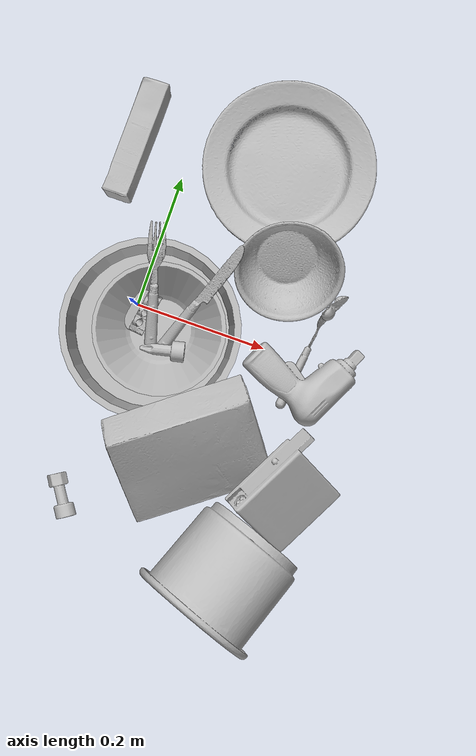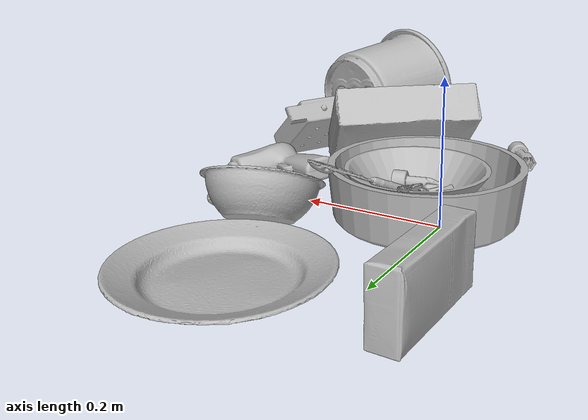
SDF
<sdf version="1.4">
  <world name="default">
    <light name="light1" type="point">
      <pose>0 0 1 0 0 0</pose>
      <diffuse>3 3 3 1</diffuse>
      <specular>3 3 3 1</specular>
    </light>
    <light name="light2" type="point">
      <pose>0 0.5 2 0 0 0</pose>
      <diffuse>1 1 1 1</diffuse>
      <specular>1 1 1 1</specular>
    </light>
    <light name="light3" type="point">
      <pose>0 0.5 2 0 0 0</pose>
      <diffuse>3 3 3 1</diffuse>
      <specular>3 3 3 1</specular>
    </light>
    <scene>
      <ambient>0.7 0.7 0.7</ambient>
    </scene>
    <model name="plate1">
      <link name="link_plate1">
        <collision name="default">
          <geometry>
            <mesh>
              <uri>model://plate/collision_meshes/collision.obj</uri>
              <scale>1.0 1.0 1.0</scale>
            </mesh>
          </geometry>
          <surface>
            <friction>
              <ode>
                <mu>0.5</mu>
                <mu2>0.5</mu2>
              </ode>
            </friction>
          <contact>
        <ode>
            <max_vel>0</max_vel>
            <min_depth>0.0001</min_depth>
            <kp>1e8</kp>
        </ode>
    </contact></surface>
        </collision>
        <visual name="default">
          <geometry>
            <mesh>
              <uri>model://plate/visual_meshes/visual.dae</uri>
              <scale>1.0 1.0 1.0</scale>
            </mesh>
          </geometry>
        </visual>
        <inertial>
          <mass>0.11001742631196976</mass>
          <pose>-0.0006044686888344586 0.000278257648460567 -0.0010561998933553696 0.00221878912528286 -0.0032254756485070152 0.4526088917028743</pose>
          <inertia>
            <ixx>0.00051466376</ixx>
            <iyy>0.0005097412</iyy>
            <izz>0.0010066056</izz>
            <ixy>0</ixy>
            <ixz>0</ixz>
            <iyz>0</iyz>
          </inertia>
        </inertial>
      </link>
      <pose>0.1466570943593979 0.2662479877471924 0.013734634965658188 -4.242810837939208e-06 -2.1819527553199885e-05 0.8707884709067185</pose>
    </model>
    <model name="plate2">
      <link name="link_plate2">
        <collision name="default">
          <geometry>
            <mesh>
              <uri>model://pan_tefal/collision_meshes/collision.obj</uri>
              <scale>1.0 1.0 1.0</scale>
            </mesh>
          </geometry>
          <surface>
            <friction>
              <ode>
                <mu>0.5</mu>
                <mu2>0.5</mu2>
              </ode>
            </friction>
          <contact>
        <ode>
            <max_vel>0</max_vel>
            <min_depth>0.0001</min_depth>
            <kp>1e8</kp>
        </ode>
    </contact></surface>
        </collision>
        <visual name="default">
          <geometry>
            <mesh>
              <uri>model://pan_tefal/visual_meshes/visual.dae</uri>
              <scale>1.0 1.0 1.0</scale>
            </mesh>
          </geometry>
        </visual>
        <inertial>
          <mass>1.457576870918274</mass>
          <pose>-0.00018002426077146083 3.279360316810198e-05 -0.008514936082065105 0.0008190306735146073 -0.00033013365411173643 -0.33185917339097665</pose>
          <inertia>
            <ixx>0.010061583</ixx>
            <iyy>0.01012645</iyy>
            <izz>0.01852144</izz>
            <ixy>0</ixy>
            <ixz>0</ixz>
            <iyz>0</iyz>
          </inertia>
        </inertial>
      </link>
      <pose>0.033562950789928436 -0.028298603370785713 0.038050003349781036 -7.843687031109581e-08 -2.0860222666657192e-07 2.054927818524834</pose>
    </model>
    <model name="bowl1">
      <link name="link_bowl1">
        <collision name="default">
          <geometry>
            <mesh>
              <uri>model://bowl_a/collision_meshes/collision.obj</uri>
              <scale>1.0 1.0 1.0</scale>
            </mesh>
          </geometry>
          <surface>
            <friction>
              <ode>
                <mu>0.5</mu>
                <mu2>0.5</mu2>
              </ode>
            </friction>
          <contact>
        <ode>
            <max_vel>0</max_vel>
            <min_depth>0.0001</min_depth>
            <kp>1e8</kp>
        </ode>
    </contact></surface>
        </collision>
        <visual name="default">
          <geometry>
            <mesh>
              <uri>model://bowl_a/visual_meshes/visual.dae</uri>
              <scale>1.0 1.0 1.0</scale>
            </mesh>
          </geometry>
        </visual>
        <inertial>
          <mass>0.29746556282043457</mass>
          <pose>0.0002786756958812475 4.7311452362919226e-05 -0.0013765294570475817 -0.0009805438325310402 -0.001093816410149737 -0.19123071729823712</pose>
          <inertia>
            <ixx>0.0008468981</ixx>
            <iyy>0.00085209764</iyy>
            <izz>0.0015062407</izz>
            <ixy>0</ixy>
            <ixz>0</ixz>
            <iyz>0</iyz>
          </inertia>
        </inertial>
      </link>
      <pose>0.04555271938443184 -0.024563731625676155 0.03814271092414856 -3.687482895918681e-05 -4.3826119730024e-06 -0.4978534741891756</pose>
    </model>
    <model name="bowl2">
      <link name="link_bowl2">
        <collision name="default">
          <geometry>
            <mesh>
              <uri>model://bowl/collision_meshes/collision.obj</uri>
              <scale>1.0 1.0 1.0</scale>
            </mesh>
          </geometry>
          <surface>
            <friction>
              <ode>
                <mu>0.5</mu>
                <mu2>0.5</mu2>
              </ode>
            </friction>
          <contact>
        <ode>
            <max_vel>0</max_vel>
            <min_depth>0.0001</min_depth>
            <kp>1e8</kp>
        </ode>
    </contact></surface>
        </collision>
        <visual name="default">
          <geometry>
            <mesh>
              <uri>model://bowl/visual_meshes/visual.dae</uri>
              <scale>1.0 1.0 1.0</scale>
            </mesh>
          </geometry>
        </visual>
        <inertial>
          <mass>0.12348172068595886</mass>
          <pose>0.0002044529828708619 -0.0010302055161446333 -0.0008042656118050218 -0.01576411854188812 0.014546757923928972 0.7140383762832406</pose>
          <inertia>
            <ixx>0.0002836472</ixx>
            <iyy>0.00027730947</iyy>
            <izz>0.00047719217</izz>
            <ixy>0</ixy>
            <ixz>0</ixz>
            <iyz>0</iyz>
          </inertia>
        </inertial>
      </link>
      <pose>0.19298994541168213 0.12714388966560364 0.046164318919181824 -0.09693987458716666 -0.5099273744569561 2.1344093214832784</pose>
    </model>
    <model name="silverware1">
      <link name="link_silverware1">
        <collision name="default">
          <geometry>
            <mesh>
              <uri>model://spoon/collision_meshes/collision.obj</uri>
              <scale>1.0 1.0 1.0</scale>
            </mesh>
          </geometry>
          <surface>
            <friction>
              <ode>
                <mu>0.5</mu>
                <mu2>0.5</mu2>
              </ode>
            </friction>
          <contact>
        <ode>
            <max_vel>0</max_vel>
            <min_depth>0.0001</min_depth>
            <kp>1e8</kp>
        </ode>
    </contact></surface>
        </collision>
        <visual name="default">
          <geometry>
            <mesh>
              <uri>model://spoon/visual_meshes/visual.dae</uri>
              <scale>1.0 1.0 1.0</scale>
            </mesh>
          </geometry>
        </visual>
        <inertial>
          <mass>0.03284037858247757</mass>
          <pose>-0.005526319611817598 -0.001603417214937508 -0.000727165665011853 0.03521671059584429 -0.039065856285187314 0.0061506144474233635</pose>
          <inertia>
            <ixx>1.8266356e-06</ixx>
            <iyy>0.00012495652</iyy>
            <izz>0.00012585736</izz>
            <ixy>0</ixy>
            <ixz>0</ixz>
            <iyz>0</iyz>
          </inertia>
        </inertial>
      </link>
      <pose>0.2645992934703827 0.021204235032200813 0.018093686550855637 1.214607604562551 -0.06394765496642571 1.440027724016523</pose>
    </model>
    <model name="box1">
      <link name="link_box1">
        <collision name="default">
          <geometry>
            <mesh>
              <uri>model://cracker_box/collision_meshes/collision.obj</uri>
              <scale>1.0 1.0 1.0</scale>
            </mesh>
          </geometry>
          <surface>
            <friction>
              <ode>
                <mu>0.5</mu>
                <mu2>0.5</mu2>
              </ode>
            </friction>
          <contact>
        <ode>
            <max_vel>0</max_vel>
            <min_depth>0.0001</min_depth>
            <kp>1e8</kp>
        </ode>
    </contact></surface>
        </collision>
        <visual name="default">
          <geometry>
            <mesh>
              <uri>model://cracker_box/visual_meshes/visual.dae</uri>
              <scale>1.0 1.0 1.0</scale>
            </mesh>
          </geometry>
        </visual>
        <inertial>
          <mass>2.434305191040039</mass>
          <pose>0.0009464126778766513 0.0002543424488976598 -0.0017029534792527556 -0.0003162073658586955 -0.011106488669321329 0.0025467952332158075</pose>
          <inertia>
            <ixx>0.0061917845</ixx>
            <iyy>0.010223853</iyy>
            <izz>0.014590379</izz>
            <ixy>0</ixy>
            <ixz>0</ixz>
            <iyz>0</iyz>
          </inertia>
        </inertial>
      </link>
      <pose>0.14332635700702667 -0.17373745143413544 0.07391631603240967 -2.442596901699033 -0.004909393078295249 0.6453920427870847</pose>
    </model>
    <model name="box2">
      <link name="link_box2">
        <collision name="default">
          <geometry>
            <mesh>
              <uri>model://sugar_box/collision_meshes/collision.obj</uri>
              <scale>1.0 1.0 1.0</scale>
            </mesh>
          </geometry>
          <surface>
            <friction>
              <ode>
                <mu>0.5</mu>
                <mu2>0.5</mu2>
              </ode>
            </friction>
          <contact>
        <ode>
            <max_vel>0</max_vel>
            <min_depth>0.0001</min_depth>
            <kp>1e8</kp>
        </ode>
    </contact></surface>
        </collision>
        <visual name="default">
          <geometry>
            <mesh>
              <uri>model://sugar_box/visual_meshes/visual.dae</uri>
              <scale>1.0 1.0 1.0</scale>
            </mesh>
          </geometry>
        </visual>
        <inertial>
          <mass>0.5700510144233704</mass>
          <pose>0.0010343727190047503 3.849109634757042e-05 -0.00036364805418998003 -0.00040462615490547663 0.0010506634056045778 0.0026153790218534064</pose>
          <inertia>
            <ixx>0.00047496508</ixx>
            <iyy>0.0015351841</iyy>
            <izz>0.0018377992</izz>
            <ixy>0</ixy>
            <ixz>0</ixz>
            <iyz>0</iyz>
          </inertia>
        </inertial>
      </link>
      <pose>-0.0768805667757988 0.2252604067325592 0.04645010828971863 1.5710190225548992 -3.9895686822150155e-05 1.5500752962504336</pose>
    </model>
    <model name="cup1">
      <link name="link_cup1">
        <collision name="default">
          <geometry>
            <mesh>
              <uri>model://i_cups/collision_meshes/collision.obj</uri>
              <scale>2.0 2.0 2.0</scale>
            </mesh>
          </geometry>
          <surface>
            <friction>
              <ode>
                <mu>0.5</mu>
                <mu2>0.5</mu2>
              </ode>
            </friction>
          <contact>
        <ode>
            <max_vel>0</max_vel>
            <min_depth>0.0001</min_depth>
            <kp>1e8</kp>
        </ode>
    </contact></surface>
        </collision>
        <visual name="default">
          <geometry>
            <mesh>
              <uri>model://i_cups/visual_meshes/visual.dae</uri>
              <scale>2.0 2.0 2.0</scale>
            </mesh>
          </geometry>
        </visual>
        <inertial>
          <mass>0.8749163746833801</mass>
          <pose>0.0002248019736725837 0.0003359491820447147 -0.0017158064292743802 -0.028982988446176382 -0.03987323668700188 -0.3459135059395342</pose>
          <inertia>
            <ixx>0.0048453393</ixx>
            <iyy>0.0048880302</iyy>
            <izz>0.0054154512</izz>
            <ixy>0</ixy>
            <ixz>0</ixz>
            <iyz>0</iyz>
          </inertia>
        </inertial>
      </link>
      <pose>0.25211969017982483 -0.32757529616355896 0.08967653661966324 1.4402413544698034 0.4711805551179363 -0.41767334059659283</pose>
    </model>
    <model name="silverware2">
      <link name="link_silverware2">
        <collision name="default">
          <geometry>
            <mesh>
              <uri>model://fork/collision_meshes/collision.obj</uri>
              <scale>1.0 1.0 1.0</scale>
            </mesh>
          </geometry>
          <surface>
            <friction>
              <ode>
                <mu>0.5</mu>
                <mu2>0.5</mu2>
              </ode>
            </friction>
          <contact>
        <ode>
            <max_vel>0</max_vel>
            <min_depth>0.0001</min_depth>
            <kp>1e8</kp>
        </ode>
    </contact></surface>
        </collision>
        <visual name="default">
          <geometry>
            <mesh>
              <uri>model://fork/visual_meshes/visual.dae</uri>
              <scale>1.0 1.0 1.0</scale>
            </mesh>
          </geometry>
        </visual>
        <inertial>
          <mass>0.021080315113067627</mass>
          <pose>-0.02957003377377987 0.00046588227269239724 0.0003218860656488687 -0.013550583544297463 -0.010977830979267335 0.014453899239778455</pose>
          <inertia>
            <ixx>7.3898417e-07</ixx>
            <iyy>5.503463e-05</iyy>
            <izz>5.5365177e-05</izz>
            <ixy>0</ixy>
            <ixz>0</ixz>
            <iyz>0</iyz>
          </inertia>
        </inertial>
      </link>
      <pose>0.017494667321443558 0.031532224267721176 0.05758325010538101 -2.863959847638956 -0.4346490744373793 1.8220036812245386</pose>
    </model>
    <model name="silverware3">
      <link name="link_silverware3">
        <collision name="default">
          <geometry>
            <mesh>
              <uri>model://knife/collision_meshes/collision.obj</uri>
              <scale>1.0 1.0 1.0</scale>
            </mesh>
          </geometry>
          <surface>
            <friction>
              <ode>
                <mu>0.5</mu>
                <mu2>0.5</mu2>
              </ode>
            </friction>
          <contact>
        <ode>
            <max_vel>0</max_vel>
            <min_depth>0.0001</min_depth>
            <kp>1e8</kp>
        </ode>
    </contact></surface>
        </collision>
        <visual name="default">
          <geometry>
            <mesh>
              <uri>model://knife/visual_meshes/visual.dae</uri>
              <scale>1.0 1.0 1.0</scale>
            </mesh>
          </geometry>
        </visual>
        <inertial>
          <mass>0.03557601198554039</mass>
          <pose>-0.023785259574651718 0.0015275123296305537 5.062016498413868e-05 0.07305791577183936 0.01724842049726123 -0.007409813921982597</pose>
          <inertia>
            <ixx>1.0097915e-06</ixx>
            <iyy>0.00013667726</iyy>
            <izz>0.00013700248</izz>
            <ixy>0</ixy>
            <ixz>0</ixz>
            <iyz>0</iyz>
          </inertia>
        </inertial>
      </link>
      <pose>0.08959555625915527 0.0343799814581871 0.061899326741695404 -0.12688061727414673 -0.44209684739536675 1.1971429420739537</pose>
    </model>
    <model name="toy1">
      <link name="link_toy1">
        <collision name="default">
          <geometry>
            <mesh>
              <uri>model://b_toy_airplane/collision_meshes/collision.obj</uri>
              <scale>1.0 1.0 1.0</scale>
            </mesh>
          </geometry>
          <surface>
            <friction>
              <ode>
                <mu>0.5</mu>
                <mu2>0.5</mu2>
              </ode>
            </friction>
          <contact>
        <ode>
            <max_vel>0</max_vel>
            <min_depth>0.0001</min_depth>
            <kp>1e8</kp>
        </ode>
    </contact></surface>
        </collision>
        <visual name="default">
          <geometry>
            <mesh>
              <uri>model://b_toy_airplane/visual_meshes/visual.dae</uri>
              <scale>1.0 1.0 1.0</scale>
            </mesh>
          </geometry>
        </visual>
        <inertial>
          <mass>0.2131570726633072</mass>
          <pose>0.005081363953649998 0.00401558680459857 0.00954306498169899 -0.040018114912876775 -0.04022188568687408 -0.5601502887595425</pose>
          <inertia>
            <ixx>0.00039573</ixx>
            <iyy>0.00015817716</iyy>
            <izz>0.00049232744</izz>
            <ixy>0</ixy>
            <ixz>0</ixz>
            <iyz>0</iyz>
          </inertia>
        </inertial>
      </link>
      <pose>0.27333444356918335 -0.03292173147201538 0.04176981747150421 -2.9346624645719284 0.04298538672997726 1.116361551977342</pose>
    </model>
    <model name="toy2">
      <link name="link_toy2">
        <collision name="default">
          <geometry>
            <mesh>
              <uri>model://nine_hole_peg_test/collision_meshes/collision.obj</uri>
              <scale>1.0 1.0 1.0</scale>
            </mesh>
          </geometry>
          <surface>
            <friction>
              <ode>
                <mu>0.5</mu>
                <mu2>0.5</mu2>
              </ode>
            </friction>
          <contact>
        <ode>
            <max_vel>0</max_vel>
            <min_depth>0.0001</min_depth>
            <kp>1e8</kp>
        </ode>
    </contact></surface>
        </collision>
        <visual name="default">
          <geometry>
            <mesh>
              <uri>model://nine_hole_peg_test/visual_meshes/visual.dae</uri>
              <scale>1.0 1.0 1.0</scale>
            </mesh>
          </geometry>
        </visual>
        <inertial>
          <mass>0.9403080940246582</mass>
          <pose>-0.004617387894541025 -0.009647617116570473 2.646069333422929e-05 -0.0014666798116952742 0.0007194174694617774 -0.6342424398534297</pose>
          <inertia>
            <ixx>0.0014703267</ixx>
            <iyy>0.0013728285</iyy>
            <izz>0.0025764457</izz>
            <ixy>0</ixy>
            <ixz>0</ixz>
            <iyz>0</iyz>
          </inertia>
        </inertial>
      </link>
      <pose>0.29925787448883057 -0.1838046908378601 0.05862387269735336 -3.133104477567877 -0.6929275015774304 2.659840213601518</pose>
    </model>
    <model name="toy3">
      <link name="link_toy3">
        <collision name="default">
          <geometry>
            <mesh>
              <uri>model://a_lego_duplo/collision_meshes/collision.obj</uri>
              <scale>1.0 1.0 1.0</scale>
            </mesh>
          </geometry>
          <surface>
            <friction>
              <ode>
                <mu>0.5</mu>
                <mu2>0.5</mu2>
              </ode>
            </friction>
          <contact>
        <ode>
            <max_vel>0</max_vel>
            <min_depth>0.0001</min_depth>
            <kp>1e8</kp>
        </ode>
    </contact></surface>
        </collision>
        <visual name="default">
          <geometry>
            <mesh>
              <uri>model://a_lego_duplo/visual_meshes/visual.dae</uri>
              <scale>1.0 1.0 1.0</scale>
            </mesh>
          </geometry>
        </visual>
        <inertial>
          <mass>0.023130550980567932</mass>
          <pose>-0.00011337705655023456 0.00018517566786613315 0.00036926098982803524 -0.014116995996849858 -0.00012565876120078728 6.143831699070756e-05</pose>
          <inertia>
            <ixx>2.9655212e-06</ixx>
            <iyy>6.643419e-06</iyy>
            <izz>8.229349e-06</izz>
            <ixy>0</ixy>
            <ixz>0</ixz>
            <iyz>0</iyz>
          </inertia>
        </inertial>
      </link>
      <pose>0.009181953966617584 -0.007602761033922434 0.0299326553940773 -2.3270134836443055 -0.046763627076313694 1.4095641605551046</pose>
    </model>
    <model name="toy4">
      <link name="link_toy4">
        <collision name="default">
          <geometry>
            <mesh>
              <uri>model://c_toy_airplane/collision_meshes/collision.obj</uri>
              <scale>1.0 1.0 1.0</scale>
            </mesh>
          </geometry>
          <surface>
            <friction>
              <ode>
                <mu>0.5</mu>
                <mu2>0.5</mu2>
              </ode>
            </friction>
          <contact>
        <ode>
            <max_vel>0</max_vel>
            <min_depth>0.0001</min_depth>
            <kp>1e8</kp>
        </ode>
    </contact></surface>
        </collision>
        <visual name="default">
          <geometry>
            <mesh>
              <uri>model://c_toy_airplane/visual_meshes/visual.dae</uri>
              <scale>1.0 1.0 1.0</scale>
            </mesh>
          </geometry>
        </visual>
        <inertial>
          <mass>0.016945533454418182</mass>
          <pose>-0.00023024251277092844 -4.426267139479023e-07 -0.006080526392906904 -0.00619248279943298 -0.01679780513617648 0.7654772671109313</pose>
          <inertia>
            <ixx>7.781044e-06</ixx>
            <iyy>7.759084e-06</iyy>
            <izz>1.826835e-06</izz>
            <ixy>0</ixy>
            <ixz>0</ixz>
            <iyz>0</iyz>
          </inertia>
        </inertial>
      </link>
      <pose>-0.011928388848900795 -0.3059024512767792 0.014215914532542229 -1.7880923625440168 1.3247745523811618 0.3608619723723585</pose>
    </model>
    <model name="toy5">
      <link name="link_toy5">
        <collision name="default">
          <geometry>
            <mesh>
              <uri>model://d_toy_airplane/collision_meshes/collision.obj</uri>
              <scale>1.0 1.0 1.0</scale>
            </mesh>
          </geometry>
          <surface>
            <friction>
              <ode>
                <mu>0.5</mu>
                <mu2>0.5</mu2>
              </ode>
            </friction>
          <contact>
        <ode>
            <max_vel>0</max_vel>
            <min_depth>0.0001</min_depth>
            <kp>1e8</kp>
        </ode>
    </contact></surface>
        </collision>
        <visual name="default">
          <geometry>
            <mesh>
              <uri>model://d_toy_airplane/visual_meshes/visual.dae</uri>
              <scale>1.0 1.0 1.0</scale>
            </mesh>
          </geometry>
        </visual>
        <inertial>
          <mass>0.01782749593257904</mass>
          <pose>9.410309576196596e-05 -5.809334834339097e-05 -0.011728094890713692 0.00026697885790152897 0.00467897817044427 0.5194648744438854</pose>
          <inertia>
            <ixx>5.3443378e-06</ixx>
            <iyy>5.3483677e-06</iyy>
            <izz>1.6134899e-06</izz>
            <ixy>0</ixy>
            <ixz>0</ixz>
            <iyz>0</iyz>
          </inertia>
        </inertial>
      </link>
      <pose>0.05875825881958008 -0.05190150439739227 0.03633459284901619 -1.567437114566724 0.14237537656259225 1.8047415363765862</pose>
    </model>
  <physics type="ode">
      <max_contacts>50</max_contacts>
      <ode>
        <solver>
          <type>quick</type>
          <iters>75</iters>
        </solver>
        <constraints>
          <contact_max_correcting_vel>0</contact_max_correcting_vel>
          <contact_surface_layer>0</contact_surface_layer>
        </constraints>
      </ode>
    </physics></world>
</sdf>
